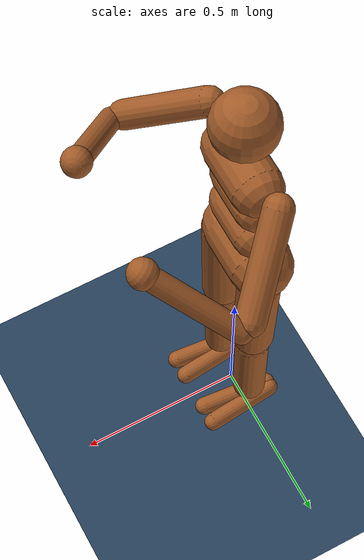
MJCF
<mujoco model="Humanoid">
  <option timestep="0.005" iterations="1" ls_iterations="4">
    <flag eulerdamp="disable" />
  </option>

  <visual>
    <map force="0.1" zfar="30" />
    <rgba haze="0.15 0.25 0.35 1" />
    <global offwidth="2560" offheight="1440" elevation="-20" azimuth="120" />
  </visual>

  <statistic center="0 0 0.7" />

  <asset>
    <texture type="skybox" builtin="gradient" rgb1=".3 .5 .7" rgb2="0 0 0" width="32" height="512" />
    <texture name="body" type="cube" builtin="flat" mark="cross" width="128" height="128"
      rgb1="0.8 0.6 0.4" rgb2="0.8 0.6 0.4" markrgb="1 1 1" random="0.01" />
    <material name="body" texture="body" texuniform="true" rgba="0.8 0.6 .4 1" />
    <texture name="grid" type="2d" builtin="checker" width="512" height="512" rgb1=".1 .2 .3"
      rgb2=".2 .3 .4" />
    <material name="grid" texture="grid" texrepeat="1 1" texuniform="true" reflectance=".2" />
  </asset>

  <default>
    <motor ctrlrange="-1 1" ctrllimited="true" />
    <default class="body">

      <geom type="capsule" condim="3" friction=".7" solimp=".9 .99 .003" solref=".015 1"
        material="body" contype="0" conaffinity="0" />
      <default class="thigh">
        <geom size=".06" />
      </default>
      <default class="shin">
        <geom fromto="0 0 0 0 0 -.3" size=".049" />
      </default>
      <default class="foot">
        <geom size=".027" />
        <default class="foot1">
          <geom fromto="-.07 -.01 0 .14 -.03 0" />
        </default>
        <default class="foot2">
          <geom fromto="-.07 .01 0 .14  .03 0" />
        </default>
      </default>
      <default class="arm_upper">
        <geom size=".04" />
      </default>
      <default class="arm_lower">
        <geom size=".031" />
      </default>
      <default class="hand">
        <geom type="sphere" size=".04" />
      </default>

      <joint type="hinge" damping=".2" stiffness="1" armature=".01" limited="true"
        solimplimit="0 .99 .01" />
      <default class="joint_big">
        <joint damping="5" stiffness="10" />
        <default class="hip_x">
          <joint range="-30 10" />
        </default>
        <default class="hip_z">
          <joint range="-60 35" />
        </default>
        <default class="hip_y">
          <joint axis="0 1 0" range="-150 20" />
        </default>
        <default class="joint_big_stiff">
          <joint stiffness="20" />
        </default>
      </default>
      <default class="knee">
        <joint pos="0 0 .02" axis="0 -1 0" range="-160 2" />
      </default>
      <default class="ankle">
        <joint range="-50 50" />
        <default class="ankle_y">
          <joint pos="0 0 .08" axis="0 1 0" stiffness="6" />
        </default>
        <default class="ankle_x">
          <joint pos="0 0 .04" stiffness="3" />
        </default>
      </default>
      <default class="shoulder">
        <joint range="-85 60" />
      </default>
      <default class="elbow">
        <joint range="-100 50" stiffness="0" />
      </default>
    </default>
  </default>

  <worldbody>
    <geom name="floor" size="0 0 .05" type="plane" material="grid" condim="3" />
    <light name="spotlight" mode="targetbodycom" target="torso" diffuse=".8 .8 .8"
      specular="0.3 0.3 0.3" pos="0 -6 4" cutoff="30" />
    <body name="torso" pos="0 0 1.282" childclass="body">
      <light name="top" pos="0 0 2" mode="trackcom" />
      <camera name="back" pos="-3 0 1" xyaxes="0 -1 0 1 0 2" mode="trackcom" />
      <camera name="side" pos="0 -3 1" xyaxes="1 0 0 0 1 2" mode="trackcom" />
      <freejoint name="root" />
      <geom name="torso" fromto="0 -.07 0 0 .07 0" size=".07" />
      <geom name="waist_upper" fromto="-.01 -.06 -.12 -.01 .06 -.12" size=".06" />
      <body name="head" pos="0 0 .19">
        <geom name="head" type="sphere" size=".09" />
        <camera name="egocentric" pos=".09 0 0" xyaxes="0 -1 0 .1 0 1" fovy="80" />
      </body>
      <body name="waist_lower" pos="-.01 0 -.26">
        <geom name="waist_lower" fromto="0 -.06 0 0 .06 0" size=".06" />
        <joint name="abdomen_z" pos="0 0 .065" axis="0 0 1" range="-45 45" class="joint_big_stiff" />
        <joint name="abdomen_y" pos="0 0 .065" axis="0 1 0" range="-75 30" class="joint_big" />
        <body name="pelvis" pos="0 0 -.165">
          <joint name="abdomen_x" pos="0 0 .1" axis="1 0 0" range="-35 35" class="joint_big" />
          <geom name="butt" fromto="-.02 -.07 0 -.02 .07 0" size=".09" />
          <body name="thigh_right" pos="0 -.1 -.04">
            <joint name="hip_x_right" axis="1 0 0" class="hip_x" />
            <joint name="hip_z_right" axis="0 0 1" class="hip_z" />
            <joint name="hip_y_right" class="hip_y" />
            <geom name="thigh_right" fromto="0 0 0 0 .01 -.34" class="thigh" />
            <body name="shin_right" pos="0 .01 -.4">
              <joint name="knee_right" class="knee" />
              <geom name="shin_right" class="shin" />
              <body name="foot_right" pos="0 0 -.39">
                <joint name="ankle_y_right" class="ankle_y" />
                <joint name="ankle_x_right" class="ankle_x" axis="1 0 .5" />
                <geom name="foot1_right" class="foot1" />
                <geom name="foot2_right" class="foot2" />
              </body>
            </body>
          </body>
          <body name="thigh_left" pos="0 .1 -.04">
            <joint name="hip_x_left" axis="-1 0 0" class="hip_x" />
            <joint name="hip_z_left" axis="0 0 -1" class="hip_z" />
            <joint name="hip_y_left" class="hip_y" />
            <geom name="thigh_left" fromto="0 0 0 0 -.01 -.34" class="thigh" />
            <body name="shin_left" pos="0 -.01 -.4">
              <joint name="knee_left" class="knee" />
              <geom name="shin_left" fromto="0 0 0 0 0 -.3" class="shin" />
              <body name="foot_left" pos="0 0 -.39">
                <joint name="ankle_y_left" class="ankle_y" />
                <joint name="ankle_x_left" class="ankle_x" axis="-1 0 -.5" />
                <geom name="foot1_left" class="foot1" />
                <geom name="foot2_left" class="foot2" />
              </body>
            </body>
          </body>
        </body>
      </body>
      <body name="upper_arm_right" pos="0 -.17 .06">
        <joint name="shoulder1_right" axis="2 1 1" class="shoulder" />
        <joint name="shoulder2_right" axis="0 -1 1" class="shoulder" />
        <geom name="upper_arm_right" fromto="0 0 0 .16 -.16 -.16" class="arm_upper" />
        <body name="lower_arm_right" pos=".18 -.18 -.18">
          <joint name="elbow_right" axis="0 -1 1" class="elbow" />
          <geom name="lower_arm_right" fromto=".01 .01 .01 .17 .17 .17" class="arm_lower" />
          <body name="hand_right" pos=".18 .18 .18">
            <geom name="hand_right" zaxis="1 1 1" class="hand" />
          </body>
        </body>
      </body>
      <body name="upper_arm_left" pos="0 .17 .06">
        <joint name="shoulder1_left" axis="-2 1 -1" class="shoulder" />
        <joint name="shoulder2_left" axis="0 -1 -1" class="shoulder" />
        <geom name="upper_arm_left" fromto="0 0 0 .16 .16 -.16" class="arm_upper" />
        <body name="lower_arm_left" pos=".18 .18 -.18">
          <joint name="elbow_left" axis="0 -1 -1" class="elbow" />
          <geom name="lower_arm_left" fromto=".01 -.01 .01 .17 -.17 .17" class="arm_lower" />
          <body name="hand_left" pos=".18 -.18 .18">
            <geom name="hand_left" zaxis="1 -1 1" class="hand" />
          </body>
        </body>
      </body>
      <site name="imu_site" />
    </body>
  </worldbody>

  <contact>
    <exclude body1="waist_lower" body2="thigh_right" />
    <exclude body1="waist_lower" body2="thigh_left" />
    <pair geom1="foot1_left" geom2="floor" />
    <pair geom1="foot1_right" geom2="floor" />
    <pair geom1="foot2_left" geom2="floor" />
    <pair geom1="foot2_right" geom2="floor" />
  </contact>

  <actuator>
    <motor name="abdomen_y_ctrl" gear="40" joint="abdomen_y" />
    <motor name="abdomen_z_ctrl" gear="40" joint="abdomen_z" />
    <motor name="abdomen_x_ctrl" gear="40" joint="abdomen_x" />
    <motor name="hip_x_right_ctrl" gear="40" joint="hip_x_right" />
    <motor name="hip_z_right_ctrl" gear="40" joint="hip_z_right" />
    <motor name="hip_y_right_ctrl" gear="120" joint="hip_y_right" />
    <motor name="knee_right_ctrl" gear="80" joint="knee_right" />
    <motor name="ankle_x_right_ctrl" gear="20" joint="ankle_x_right" />
    <motor name="ankle_y_right_ctrl" gear="20" joint="ankle_y_right" />
    <motor name="hip_x_left_ctrl" gear="40" joint="hip_x_left" />
    <motor name="hip_z_left_ctrl" gear="40" joint="hip_z_left" />
    <motor name="hip_y_left_ctrl" gear="120" joint="hip_y_left" />
    <motor name="knee_left_ctrl" gear="80" joint="knee_left" />
    <motor name="ankle_x_left_ctrl" gear="20" joint="ankle_x_left" />
    <motor name="ankle_y_left_ctrl" gear="20" joint="ankle_y_left" />
    <motor name="shoulder1_right_ctrl" gear="20" joint="shoulder1_right" />
    <motor name="shoulder2_right_ctrl" gear="20" joint="shoulder2_right" />
    <motor name="elbow_right_ctrl" gear="40" joint="elbow_right" />
    <motor name="shoulder1_left_ctrl" gear="20" joint="shoulder1_left" />
    <motor name="shoulder2_left_ctrl" gear="20" joint="shoulder2_left" />
    <motor name="elbow_left_ctrl" gear="40" joint="elbow_left" />
  </actuator>

  <sensor>
    <accelerometer name="imu_acc" site="imu_site" noise="0.01" />
    <gyro name="imu_gyro" site="imu_site" noise="0.01" />
    <magnetometer name="imu_mag" site="imu_site" noise="0.05" />
    <framepos name="base_link_pos" objtype="site" objname="imu_site" />
    <framequat name="base_link_quat" objtype="site" objname="imu_site" />
    <framelinvel name="base_link_vel" objtype="site" objname="imu_site" />
    <frameangvel name="base_link_ang_vel" objtype="site" objname="imu_site" />
  </sensor>
</mujoco>
